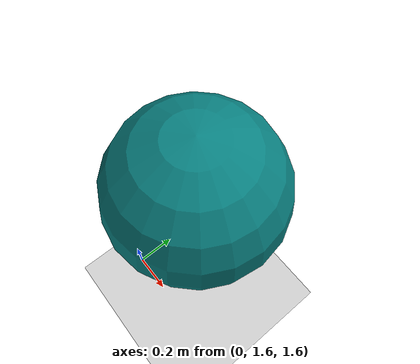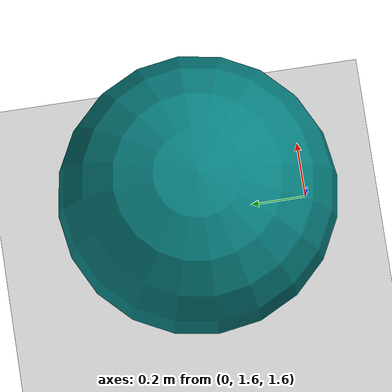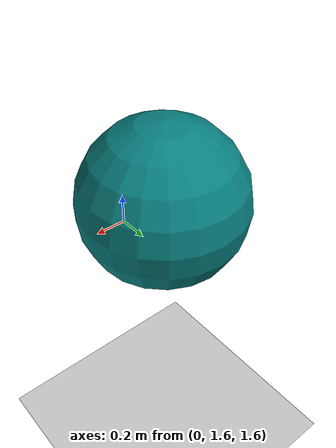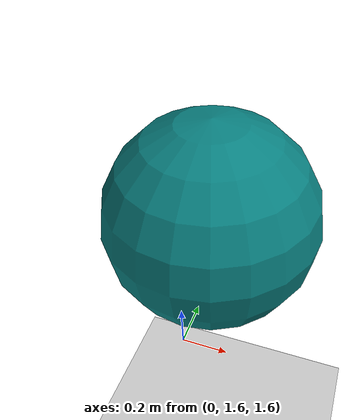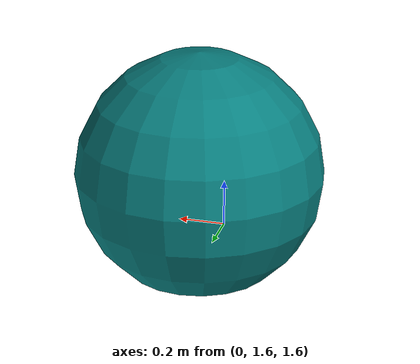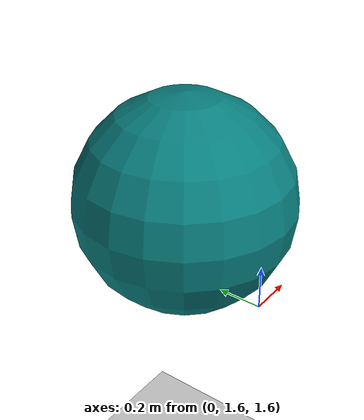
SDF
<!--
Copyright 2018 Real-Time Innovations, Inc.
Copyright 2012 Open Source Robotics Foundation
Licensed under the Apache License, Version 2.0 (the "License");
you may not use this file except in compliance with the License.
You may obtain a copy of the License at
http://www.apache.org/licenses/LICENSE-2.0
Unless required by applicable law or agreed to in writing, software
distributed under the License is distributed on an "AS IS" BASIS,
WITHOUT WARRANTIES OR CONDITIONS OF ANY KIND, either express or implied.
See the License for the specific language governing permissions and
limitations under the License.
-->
<!--
    Copied from: https://github.com/ros-simulation/gazebo_ros_pkgs/blob/kinetic-devel/gazebo_plugins/test/camera/multicamera.world
-->

<?xml version="1.0" ?>
<sdf version="1.6">

  <world name="default">
    <include>
      <uri>model://ground_plane</uri>
    </include>

    <!-- Global light source -->
    <include>
      <uri>model://sun</uri>
    </include>

    <!-- Focus camera on tall pendulum -->
    <gui fullscreen='0'>
      <camera name='user_camera'>
        <pose>4.927360 -4.376610 3.740080 0.000000 0.275643 2.356190</pose>
        <view_controller>orbit</view_controller>
      </camera>
    </gui>

  <model name="model_1">
    <static>false</static>
    <pose>0.0 2.0 2.0 0.0 0.0 0.0</pose>
    <link name="link_1">
      <pose>0.0 0.0 0.0 0.0 0.0 0.0</pose>
      <inertial>
        <pose>0.0 0.0 0.0 0.0 0.0 0.0</pose>
        <inertia>
          <ixx>1.0</ixx>
          <ixy>0.0</ixy>
          <ixz>0.0</ixz>
          <iyy>1.0</iyy>
          <iyz>0.0</iyz>
          <izz>1.0</izz>
        </inertia>
        <mass>10.0</mass>
      </inertial>
      <visual name="visual_sphere">
        <pose>0.0 0.0 0.0 0.0 0.0 0.0</pose>
        <geometry>
          <sphere>
            <radius>0.5</radius>
          </sphere>
        </geometry>
        <material>
          <ambient>0.03 0.5 0.5 1.0</ambient>
          <script>Gazebo/Green</script>
        </material>
        <cast_shadows>true</cast_shadows>
        <laser_retro>100.0</laser_retro>
      </visual>
      <collision name="collision_sphere">
        <pose>0.0 0.0 0.0 0.0 0.0 0.0</pose>
        <max_contacts>250</max_contacts>
        <geometry>
          <sphere>
            <radius>0.5</radius>
          </sphere>
        </geometry>
        <surface>
          <friction>
            <ode>
              <mu>0.5</mu>
              <mu2>0.2</mu2>
              <fdir1>1.0 0 0</fdir1>
              <slip1>0</slip1>
              <slip2>0</slip2>
            </ode>
          </friction>
          <bounce>
            <restitution_coefficient>0</restitution_coefficient>
            <threshold>1000000.0</threshold>
          </bounce>
          <contact>
            <ode>
              <soft_cfm>0</soft_cfm>
              <soft_erp>0.2</soft_erp>
              <kp>1e15</kp>
              <kd>1e13</kd>
              <max_vel>100.0</max_vel>
              <min_depth>0.0001</min_depth>
            </ode>
          </contact>
        </surface>
        <laser_retro>100.0</laser_retro>
      </collision>

      <sensor type="multicamera" name="stereo_camera">
        <update_rate>0.1</update_rate>
        <camera name="camera_left">
          <horizontal_fov>1.3962634</horizontal_fov>
          <image>
            <width>640</width>
            <height>480</height>
            <format>R8G8B8</format>
          </image>
          <clip>
            <near>0.02</near>
            <far>300</far>
          </clip>
          <noise>
            <type>gaussian</type>
            <mean>0.0</mean>
            <stddev>0.007</stddev>
          </noise>
        </camera>
        <camera name="camera_right">
          <pose>0 -0.07 0 0 0 0</pose>
          <horizontal_fov>1.3962634</horizontal_fov>
          <image>
            <width>640</width>
            <height>480</height>
            <format>R8G8B8</format>
          </image>
          <clip>
            <near>0.02</near>
            <far>300</far>
          </clip>
          <noise>
            <type>gaussian</type>
            <mean>0.0</mean>
            <stddev>0.007</stddev>
          </noise>
        </camera>
        <plugin name="stereo_camera_controller" filename="stereo_camera/libDdsStereoCameraPlugin.so">
          <update_rate>0.0</update_rate>
          <dds_domain_id>0</dds_domain_id>
          <frame_name>camera_link</frame_name>
          <topic_name_image>image_raw</topic_name_image>
          <topic_name_camera_info>camera_info</topic_name_camera_info>
          <frameName>left_camera_optical_frame</frameName>
          <hack_baseline>0.07</hack_baseline>
          <distortion_k1>0.0</distortion_k1>
          <distortion_k2>0.0</distortion_k2>
          <distortion_k3>0.0</distortion_k3>
          <distortion_t1>0.0</distortion_t1>
          <distortion_t2>0.0</distortion_t2>
          <cx_prime>0.0</cx_prime>
          <cx>0.0</cx>
          <cy>0.0</cy>
          <focal_length>0</focal_length>
          <border_crop>true</border_crop>
        </plugin>
      </sensor>
    </link>
  </model>

  </world>
</sdf>
